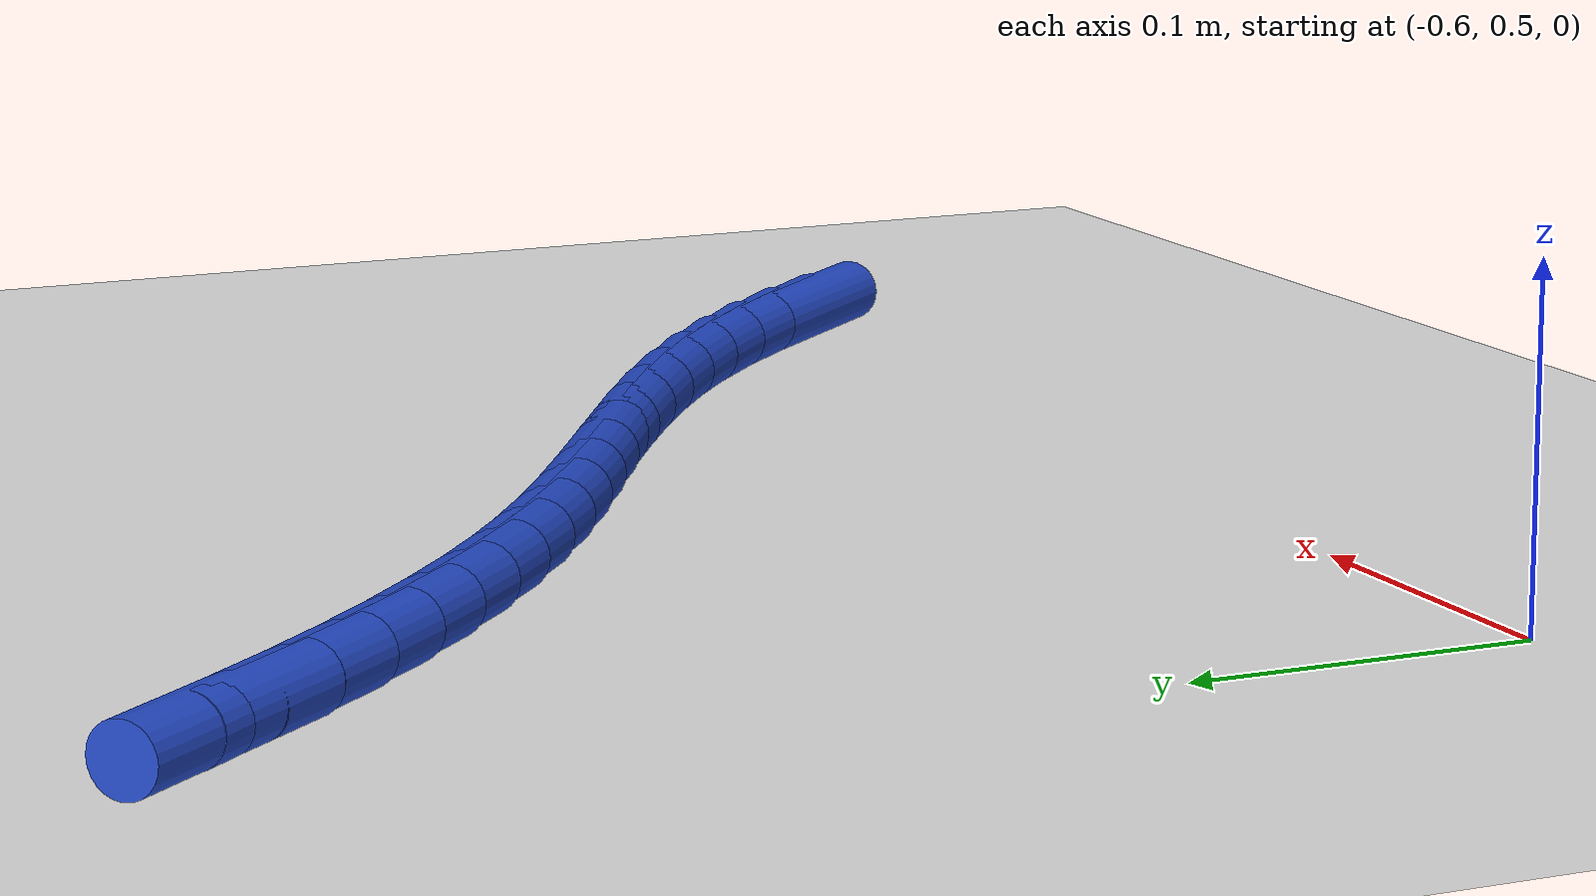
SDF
<sdf version="1.6">
 <world name="default">
  <model name="ground_plane">
   <static>1</static>
   <link name="link">
    <collision name="collision">
     <geometry><plane><normal>0 0 1</normal><size>100 100</size></plane></geometry>
     <surface><friction><ode><mu>100</mu><mu2>50</mu2></ode></friction></surface>
    </collision>
    <visual name="visual">
     <cast_shadows>0</cast_shadows>
     <geometry><plane><normal>0 0 1</normal><size>100 100</size></plane></geometry>
     <material>
      <script><uri>file://media/materials/scripts/gazebo.material</uri><name>Gazebo/WhiteGlow</name></script>
     </material>
    </visual>
   </link>
  </model>
  <model name="line">
   <link name="link_20">
    <pose>-0.15949354928084256 0.5048154923730842 0.01 0 1.57 -0.8601541011872473</pose>
    <collision name="collision">
     <geometry><cylinder><radius>0.01</radius><length>0.08</length></cylinder></geometry>
    </collision>
    <visual name="visual">
     <material>
      <script><name>Gazebo/Blue</name><uri>file://media/materials/scripts/gazebo.material</uri></script>
     </material>
     <geometry><cylinder><radius>0.01</radius><length>0.08</length></cylinder></geometry>
    </visual>
   </link>
   <link name="link_21">
    <pose>-0.1770647825548563 0.5252318235213993 0.01 0 1.57 -0.8098627516726841</pose>
    <collision name="collision">
     <geometry><cylinder><radius>0.01</radius><length>0.08</length></cylinder></geometry>
    </collision>
    <visual name="visual">
     <material>
      <script><name>Gazebo/Blue</name><uri>file://media/materials/scripts/gazebo.material</uri></script>
     </material>
     <geometry><cylinder><radius>0.01</radius><length>0.08</length></cylinder></geometry>
    </visual>
   </link>
   <link name="link_22">
    <pose>-0.1956178293516259 0.5447156115158975 0.01 0 1.57 -0.7574933464994904</pose>
    <collision name="collision">
     <geometry><cylinder><radius>0.01</radius><length>0.08</length></cylinder></geometry>
    </collision>
    <visual name="visual">
     <material>
      <script><name>Gazebo/Blue</name><uri>file://media/materials/scripts/gazebo.material</uri></script>
     </material>
     <geometry><cylinder><radius>0.01</radius><length>0.08</length></cylinder></geometry>
    </visual>
   </link>
   <link name="link_23">
    <pose>-0.21516075195931628 0.5631971918358719 0.01 0 1.57 -0.703251048823187</pose>
    <collision name="collision">
     <geometry><cylinder><radius>0.01</radius><length>0.08</length></cylinder></geometry>
    </collision>
    <visual name="visual">
     <material>
      <script><name>Gazebo/Blue</name><uri>file://media/materials/scripts/gazebo.material</uri></script>
     </material>
     <geometry><cylinder><radius>0.01</radius><length>0.08</length></cylinder></geometry>
    </visual>
   </link>
   <link name="link_24">
    <pose>-0.23569851029058497 0.5806103595339971 0.01 0 1.57 -0.6528084806481628</pose>
    <collision name="collision">
     <geometry><cylinder><radius>0.01</radius><length>0.08</length></cylinder></geometry>
    </collision>
    <visual name="visual">
     <material>
      <script><name>Gazebo/Blue</name><uri>file://media/materials/scripts/gazebo.material</uri></script>
     </material>
     <geometry><cylinder><radius>0.01</radius><length>0.08</length></cylinder></geometry>
    </visual>
   </link>
   <link name="link_25">
    <pose>-0.2571349664023615 0.5970016476115715 0.01 0 1.57 -0.6127966086896626</pose>
    <collision name="collision">
     <geometry><cylinder><radius>0.01</radius><length>0.08</length></cylinder></geometry>
    </collision>
    <visual name="visual">
     <material>
      <script><name>Gazebo/Blue</name><uri>file://media/materials/scripts/gazebo.material</uri></script>
     </material>
     <geometry><cylinder><radius>0.01</radius><length>0.08</length></cylinder></geometry>
    </visual>
   </link>
   <link name="link_26">
    <pose>-0.2792529399344604 0.6125525679347155 0.01 0 1.57 -0.5833853333720594</pose>
    <collision name="collision">
     <geometry><cylinder><radius>0.01</radius><length>0.08</length></cylinder></geometry>
    </collision>
    <visual name="visual">
     <material>
      <script><name>Gazebo/Blue</name><uri>file://media/materials/scripts/gazebo.material</uri></script>
     </material>
     <geometry><cylinder><radius>0.01</radius><length>0.08</length></cylinder></geometry>
    </visual>
   </link>
   <link name="link_27">
    <pose>-0.30182811865757897 0.6274525853799099 0.01 0 1.57 -0.5643649457483669</pose>
    <collision name="collision">
     <geometry><cylinder><radius>0.01</radius><length>0.08</length></cylinder></geometry>
    </collision>
    <visual name="visual">
     <material>
      <script><name>Gazebo/Blue</name><uri>file://media/materials/scripts/gazebo.material</uri></script>
     </material>
     <geometry><cylinder><radius>0.01</radius><length>0.08</length></cylinder></geometry>
    </visual>
   </link>
   <link name="link_28">
    <pose>-0.32463619034241514 0.6418911648236363 0.01 0 1.57 -0.5556375580480541</pose>
    <collision name="collision">
     <geometry><cylinder><radius>0.01</radius><length>0.08</length></cylinder></geometry>
    </collision>
    <visual name="visual">
     <material>
      <script><name>Gazebo/Blue</name><uri>file://media/materials/scripts/gazebo.material</uri></script>
     </material>
     <geometry><cylinder><radius>0.01</radius><length>0.08</length></cylinder></geometry>
    </visual>
   </link>
   <link name="link_29">
    <pose>-0.34745284275966637 0.656057771142376 0.01 0 1.57 -0.5572785229361761</pose>
    <collision name="collision">
     <geometry><cylinder><radius>0.01</radius><length>0.08</length></cylinder></geometry>
    </collision>
    <visual name="visual">
     <material>
      <script><name>Gazebo/Blue</name><uri>file://media/materials/scripts/gazebo.material</uri></script>
     </material>
     <geometry><cylinder><radius>0.01</radius><length>0.08</length></cylinder></geometry>
    </visual>
   </link>
   <link name="link_30">
    <pose>-0.3700537636800304 0.6701418692126103 0.01 0 1.57 -0.5695722332646925</pose>
    <collision name="collision">
     <geometry><cylinder><radius>0.01</radius><length>0.08</length></cylinder></geometry>
    </collision>
    <visual name="visual">
     <material>
      <script><name>Gazebo/Blue</name><uri>file://media/materials/scripts/gazebo.material</uri></script>
     </material>
     <geometry><cylinder><radius>0.01</radius><length>0.08</length></cylinder></geometry>
    </visual>
   </link>
   <link name="link_31">
    <pose>-0.39221464087420477 0.6843329239108202 0.01 0 1.57 -0.5930246397598444</pose>
    <collision name="collision">
     <geometry><cylinder><radius>0.01</radius><length>0.08</length></cylinder></geometry>
    </collision>
    <visual name="visual">
     <material>
      <script><name>Gazebo/Blue</name><uri>file://media/materials/scripts/gazebo.material</uri></script>
     </material>
     <geometry><cylinder><radius>0.01</radius><length>0.08</length></cylinder></geometry>
    </visual>
   </link>
   <link name="link_32">
    <pose>-0.413711162112887 0.6988204001134872 0.01 0 1.57 -0.6268626961544883</pose>
    <collision name="collision">
     <geometry><cylinder><radius>0.01</radius><length>0.08</length></cylinder></geometry>
    </collision>
    <visual name="visual">
     <material>
      <script><name>Gazebo/Blue</name><uri>file://media/materials/scripts/gazebo.material</uri></script>
     </material>
     <geometry><cylinder><radius>0.01</radius><length>0.08</length></cylinder></geometry>
    </visual>
   </link>
   <link name="link_33">
    <pose>-0.43436461234086965 0.7137801187358281 0.01 0 1.57 -0.6639068947519713</pose>
    <collision name="collision">
     <geometry><cylinder><radius>0.01</radius><length>0.08</length></cylinder></geometry>
    </collision>
    <visual name="visual">
     <material>
      <script><name>Gazebo/Blue</name><uri>file://media/materials/scripts/gazebo.material</uri></script>
     </material>
     <geometry><cylinder><radius>0.01</radius><length>0.08</length></cylinder></geometry>
    </visual>
   </link>
   <link name="link_34">
    <pose>-0.45422582177543663 0.7293192142696471 0.01 0 1.57 -0.7011860236053205</pose>
    <collision name="collision">
     <geometry><cylinder><radius>0.01</radius><length>0.08</length></cylinder></geometry>
    </collision>
    <visual name="visual">
     <material>
      <script><name>Gazebo/Blue</name><uri>file://media/materials/scripts/gazebo.material</uri></script>
     </material>
     <geometry><cylinder><radius>0.01</radius><length>0.08</length></cylinder></geometry>
    </visual>
   </link>
   <link name="link_35">
    <pose>-0.47341769411603757 0.7455232547869342 0.01 0 1.57 -0.7379361261699516</pose>
    <collision name="collision">
     <geometry><cylinder><radius>0.01</radius><length>0.08</length></cylinder></geometry>
    </collision>
    <visual name="visual">
     <material>
      <script><name>Gazebo/Blue</name><uri>file://media/materials/scripts/gazebo.material</uri></script>
     </material>
     <geometry><cylinder><radius>0.01</radius><length>0.08</length></cylinder></geometry>
    </visual>
   </link>
   <link name="link_36">
    <pose>-0.4920631588665579 0.7624778006382646 0.01 0 1.57 -0.773420285654574</pose>
    <collision name="collision">
     <geometry><cylinder><radius>0.01</radius><length>0.08</length></cylinder></geometry>
    </collision>
    <visual name="visual">
     <material>
      <script><name>Gazebo/Blue</name><uri>file://media/materials/scripts/gazebo.material</uri></script>
     </material>
     <geometry><cylinder><radius>0.01</radius><length>0.08</length></cylinder></geometry>
    </visual>
   </link>
   <link name="link_37">
    <pose>-0.5102851455308823 0.780268412174213 0.01 0 1.57 -0.8069814928297969</pose>
    <collision name="collision">
     <geometry><cylinder><radius>0.01</radius><length>0.08</length></cylinder></geometry>
    </collision>
    <visual name="visual">
     <material>
      <script><name>Gazebo/Blue</name><uri>file://media/materials/scripts/gazebo.material</uri></script>
     </material>
     <geometry><cylinder><radius>0.01</radius><length>0.08</length></cylinder></geometry>
    </visual>
   </link>
   <link name="link_38">
    <pose>-0.5282065836128967 0.7989806497453545 0.01 0 1.57 -0.8380838496791576</pose>
    <collision name="collision">
     <geometry><cylinder><radius>0.01</radius><length>0.08</length></cylinder></geometry>
    </collision>
    <visual name="visual">
     <material>
      <script><name>Gazebo/Blue</name><uri>file://media/materials/scripts/gazebo.material</uri></script>
     </material>
     <geometry><cylinder><radius>0.01</radius><length>0.08</length></cylinder></geometry>
    </visual>
   </link>
   <link name="link_39">
    <pose>-0.545950402616486 0.8187000737022639 0.01 0 1.57 -0.8663361741394966</pose>
    <collision name="collision">
     <geometry><cylinder><radius>0.01</radius><length>0.08</length></cylinder></geometry>
    </collision>
    <visual name="visual">
     <material>
      <script><name>Gazebo/Blue</name><uri>file://media/materials/scripts/gazebo.material</uri></script>
     </material>
     <geometry><cylinder><radius>0.01</radius><length>0.08</length></cylinder></geometry>
    </visual>
   </link>
   <link name="link_40">
    <pose>-0.5636395320455353 0.839512244395516 0.01 0 1.57 -0.8914973038364443</pose>
    <collision name="collision">
     <geometry><cylinder><radius>0.01</radius><length>0.08</length></cylinder></geometry>
    </collision>
    <visual name="visual">
     <material>
      <script><name>Gazebo/Blue</name><uri>file://media/materials/scripts/gazebo.material</uri></script>
     </material>
     <geometry><cylinder><radius>0.01</radius><length>0.08</length></cylinder></geometry>
    </visual>
   </link>
  </model>
 </world>
</sdf>
